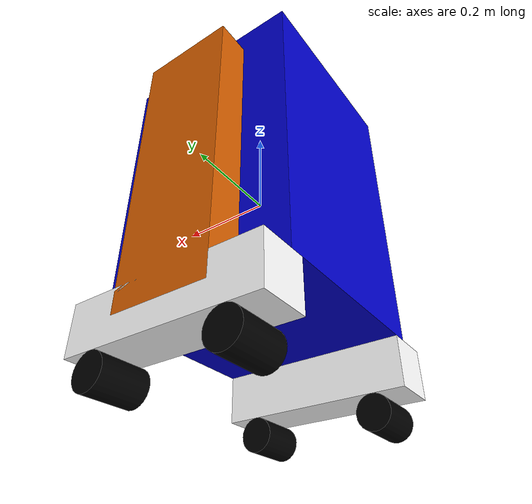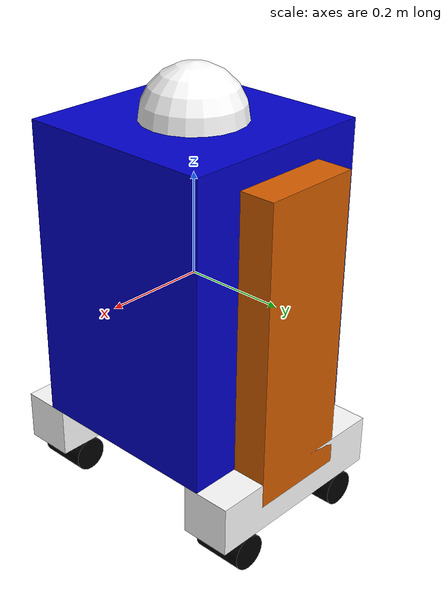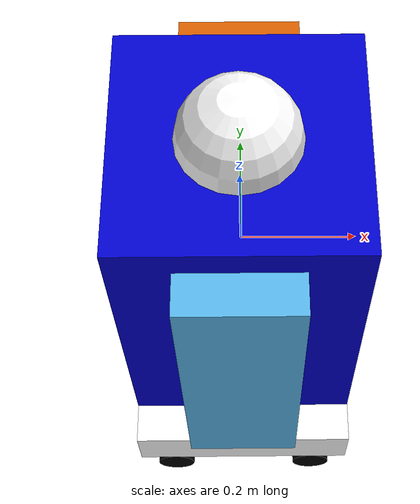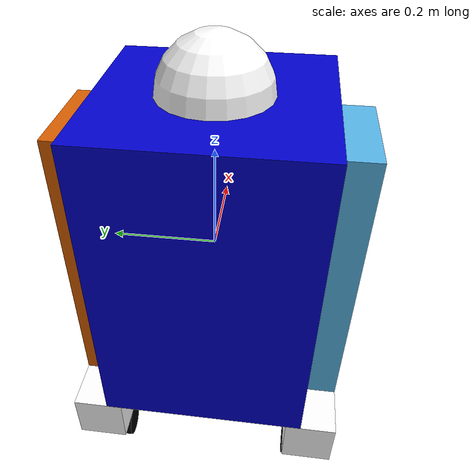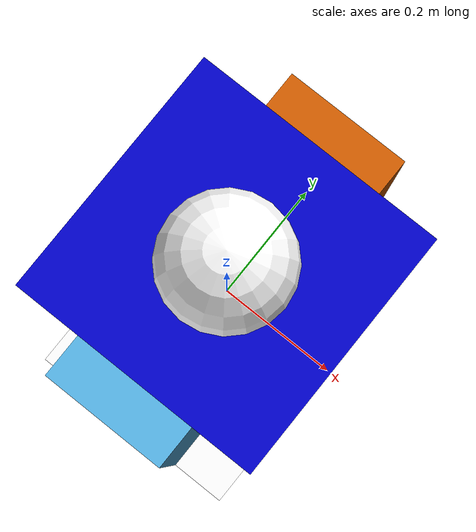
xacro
<?xml version="1.0"?>
<robot name="roscontrol" xmlns:xacro="http://ros.org/wiki/xacro">
<xacro:include filename="map.gazebo.xacro" />
  <xacro:property name="width" value="0.2" />
  <xacro:property name="leglen" value="0.6" />
  <xacro:property name="polelen" value="0.2" />
  <xacro:property name="bodylen" value="0.6" />
  <xacro:property name="baselen" value="0.4" />
  <xacro:property name="wheeldiam" value="0.07" />
  <xacro:property name="pi" value="3.1415" />

  <material name="blue">
    <color rgba="0 0 0.8 1"/>
  </material>

  <material name="black">
    <color rgba="0 0 0 1"/>
  </material>

  <material name="white">
    <color rgba="1 1 1 1"/>
  </material>

  <xacro:macro name="default_inertial" params="mass">
    <inertial>
      <mass value="${mass}" />
      <inertia ixx="1.0" ixy="0.0" ixz="0.0" iyy="1.0" iyz="0.0" izz="1.0" />
    </inertial>
  </xacro:macro>

  <link name="base_link">
    <visual>
      <geometry>
        <box size="${width*2} ${width*2} ${bodylen}" />
      </geometry>
      <material name="blue"/>
    </visual>
    <collision>
      <geometry>
        <box size="${width*2} ${width*2} ${bodylen}" />
      </geometry>
    </collision>
    <xacro:default_inertial mass="10"/>
  </link>

  <xacro:macro name="wheel" params="prefix suffix reflect">

    <link name="${prefix}_${suffix}_wheel">
      <visual>
        <origin xyz="0 0 0" rpy="${pi/2} 0 0" />
        <geometry>
          <cylinder radius="${wheeldiam/2}" length="0.1"/>
        </geometry>
        <material name="black"/>
      </visual>
      <collision>
        <origin xyz="0 0 0" rpy="${pi/2} 0 0" />
        <geometry>
          <cylinder radius="${wheeldiam/2}" length="0.1"/>
        </geometry>
      </collision>
      <xacro:default_inertial mass="1"/>
    </link>
    <joint name="${prefix}_${suffix}_wheel_joint" type="continuous">
      <axis xyz="0 1 0" rpy="0 0 0" />
      <parent link="${prefix}_base"/>
      <child link="${prefix}_${suffix}_wheel"/>
      <origin xyz="${baselen*reflect/3} 0 -${wheeldiam/2+.05}" rpy="0 0 0"/>
    </joint>

    <gazebo reference="${prefix}_${suffix}_wheel">

      <material>Gazebo/Black</material>
    </gazebo>

    <gazebo reference="base_link">

      <material>Gazebo/White</material>
    </gazebo>

    <gazebo reference="head">

      <material>Gazebo/Orange</material>
    </gazebo>

    <gazebo reference="leg">

      <material>Gazebo/Black</material>
    </gazebo>

  </xacro:macro>

  <xacro:macro name="leg" params="prefix reflect">
    <link name="${prefix}_leg">
      <visual>
        <geometry>
          <box size="${leglen} 0.1 0.2"/>
        </geometry>
        <origin xyz="0 0 -${leglen/2}" rpy="0 ${pi/2} 0"/>
      </visual>
      <collision>
        <geometry>
          <box size="${leglen} 0.1 0.2"/>
        </geometry>
        <origin xyz="0 0 -${leglen/2}" rpy="0 ${pi/2} 0"/>
      </collision>
      <xacro:default_inertial mass="10"/>
    </link>

    <joint name="base_to_${prefix}_leg" type="fixed">
      <parent link="base_link"/>
      <child link="${prefix}_leg"/>
      <origin xyz="0 ${reflect*(width+.02)} 0.25" />
    </joint>

    <link name="${prefix}_base">
      <visual>
        <geometry>
          <box size="${baselen} 0.1 0.1"/>
        </geometry>
        <material name="white"/>
      </visual>
      <collision>
        <geometry>
          <box size="${baselen} 0.1 0.1"/>
        </geometry>
      </collision>
      <xacro:default_inertial mass="10"/>
    </link>

    <joint name="${prefix}_base_joint" type="fixed">
      <parent link="${prefix}_leg"/>
      <child link="${prefix}_base"/>
      <origin xyz="0 0 ${-leglen}" />
    </joint>
    <xacro:wheel prefix="${prefix}" suffix="front" reflect="1"/>
    <xacro:wheel prefix="${prefix}" suffix="back" reflect="-1"/>
  </xacro:macro>
  <xacro:leg prefix="right" reflect="-1" />
  <xacro:leg prefix="left" reflect="1" />

  <link name="head">
    <visual>
      <geometry>
        <sphere radius="0.1" />
      </geometry>
      <material name="white"/>
    </visual>
  </link>

  <joint name="head_swivel" type="fixed">
    <parent link="base_link"/>
    <child link="head"/>
    <axis xyz="0 0 1"/>
    <origin xyz="0 0 ${bodylen/2}"/>
    <limit effort="30" velocity="1.0"/>
    <dynamics damping="0.0" friction="0.0"/>
  </joint>

</robot>
